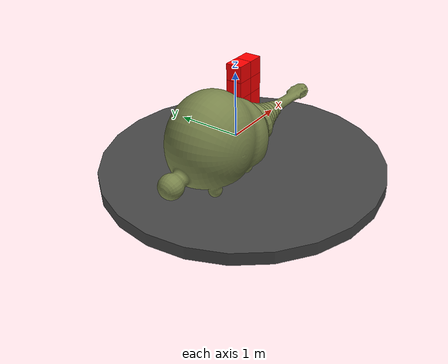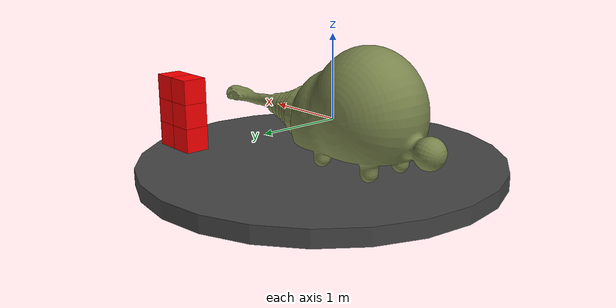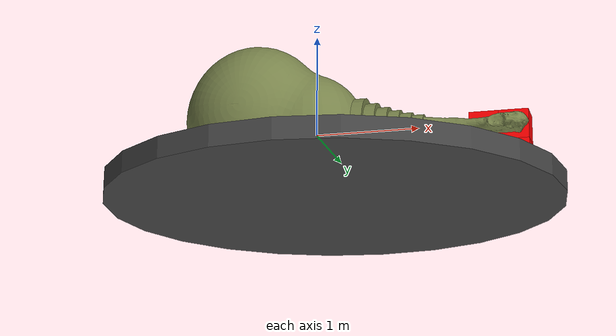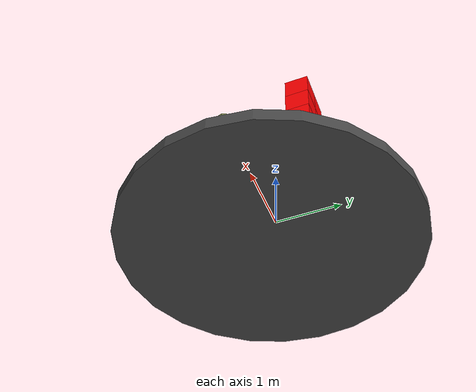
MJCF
<mujoco model="tailDoedicurus">
  <option timestep="0.008" iterations="50" solver="Newton" tolerance="1e-10" >
    <flag energy="enable"/>
  </option>
  <visual>
    <rgba haze="1 1 1 1"/>
  </visual>

  <default>
    <joint type="hinge" pos="0 0 0" axis="0 0 1" limited="true" range="-10 10" damping="0.2" solimplimit = "0.95 1 0.001 1 3"/>
    <geom material="bodies" />
  </default>

  <asset>
    <texture type="skybox" builtin="gradient" rgb1="1 1 1" rgb2="1 1 1" width="512" height="512"/>

    <texture name="texplane" type="2d" builtin="checker" rgb1=".25 .25 .25" rgb2=".3 .3 .3" width="512" height="512" mark="cross" markrgb=".8 .8 .8"/>

    <material name="matplane" reflectance="0.3" texture="texplane" texrepeat="2 2" texuniform="true"/>

    <material name="bodies" rgba="0.482353 0.52549 0.301961 1" reflectance="0" shininess="0.5"/>

    <mesh file="..\..\..\Obj\Club doedicurus_final_version_full_size.obj" name="clubMesh" scale="0.001 0.001 0.001"/>

    <mesh file="..\..\..\Obj\Carapace v9.obj" name="carapace" />

  </asset>

  <worldbody>
    <geom name="floor" pos="0.18 0 -0.6" size="2.2 0.1" type="cylinder" material="matplane"/>
    <camera name="closeup" pos="3.5 3.5 2" xyaxes="-1 1 0 0 -1 1.5"/>
    <camera name="topview" pos="0 0 5" xyaxes="1 0 0 0 1 0"/>
    <light directional="true" diffuse="1 1 1" specular=".5 .5 .5" pos="0 1 7" dir="0 -0.5 -1"/>

    <body pos="0 0 0">
      <joint name="J0" range="-90 90"/>
      <geom name="body" type = "mesh" mesh="carapace" pos="0.4 -0.03 -0.02" euler="0 0 90" mass = "1250"/>
      <site name="gyro" pos="0 0 0" size="0.01" />
      <site name="start1" pos="0 0.2 0" size="0.01"/>
      <site name="start2" pos="0 -0.2 0" size="0.01"/>
      <body pos="0.4 0 0">
        <geom name="C1" type="cylinder" pos="0.055 0 0" size=".3234 0.055" euler="0 90 0" mass="49.63"/>
        <site name="sl1" pos="0.0550 0.1617 0" size="0.01"/>
        <site name="sr1" pos="0.0550 -0.1617 0" size="0.01"/>
        <joint name="J1" />
        <geom name="J1" type="cylinder" pos="0 0 0" size=".003 .004" rgba=".5 .1 .8 .5"  group="1"/>

        <body pos="0.11 0 0">
          <geom name="C2" type="cylinder" pos="0.055 0 0" size=".2695 0.055" euler="0 90 0" mass="34.46" />
          <site name="sl2" pos="0.055 0.1347 0" size="0.01"/>
          <site name="sr2" pos="0.055 -0.1347 0" size="0.01"/>
          <joint name="J2" />
          <geom name="J2" type="cylinder" pos="0 0 0" size=".003 .004" rgba=".5 .1 .8 .5" mass="0" group="1"/>

          <body pos = "0.11 0 0">
            <geom name="C3" type="cylinder" pos="0.055 0 0" size=".2246 0.055" euler="0 90 0" mass="23.93"/>
            <site name="sl3" pos="0.055 0.1123 0" size="0.01"/>
            <site name="sr3" pos="0.055 -0.1123 0" size="0.01"/>
            <joint name="J3"/>
            <geom name ="J3" type="cylinder" pos="0 0 0" size=".003 .004" rgba=".5 .1 .8 .5" mass="0" group="1"/>

            <body pos = "0.11 0 0">
              <geom name="C4" type="cylinder" pos="0.055 0 0" size=".1871 0.055" euler="0 90 0" mass="16.62"/>
              <site name="sl4" pos="0.055 0.0935 0" size="0.01"/>
              <site name="sr4" pos="0.055 -0.0935 0" size="0.01"/>
              <joint name="J4"/>
              <geom name ="J4" type="cylinder" pos="0 0 0" size=".003 .004" rgba=".5 .1 .8 .5" mass="0" group="1"/>

              <body pos = "0.11 0 0">
                <geom name="C5" type="cylinder" pos="0.055 0 0" size=".1560 0.055" euler="0 90 0" mass="11.54"/>
                <site name="sl5" pos="0.055 0.078 0" size="0.01"/>
                <site name="sr5" pos="0.055 -0.078 0" size="0.01"/>
                <joint name="J5"/>
                <geom name ="J5" type="cylinder" pos="0 0 0" size=".003 .004" rgba=".5 .1 .8 .5" mass="0" group="1"/>

                <body pos = "0.11 0 0">
                  <geom name="C6" type="cylinder" pos="0.055 0 0" size=".1300 0.055" euler="0 90 0" mass="8.02"/>
                  <site name="sl6" pos="0.055 0.065 0" size="0.01"/>
                  <site name="sr6" pos="0.055 -0.065 0" size="0.01"/>
                  <joint name="J6"/>
                  <geom name ="J6" type="cylinder" pos="0 0 0" size=".003 .004" rgba=".5 .1 .8 .5" mass="0" group="1"/>

                  <body pos = "0.11 0 0">
                    <geom name="club" type = "mesh" mesh="clubMesh" pos="0.5 0 0" euler="0 0 180" mass = "43.59"/>
                    <site name="tip" pos="0.8 0 0" size="0.01"/>
                    <site name="cm" pos="0.51 0 0" size="0.01"/>
                    <joint name="J7"/>
                    <geom name ="J7" type="cylinder" pos="0 0 0" size=".003 .004" rgba=".5 .1 .8 .5" mass="0" group="1"/>
                    <site name="end1" pos="0.055 0.055 0" size="0.01"/>
                    <site name="end2" pos="0.055 -0.055 0" size="0.01"/>
                  </body>
                </body>
              </body>
            </body>
          </body>
        </body>
      </body>
    </body>

    <body pos = "0.7 1.5 0">
		<freejoint/>
		<geom name ="box" type ="box" size = "0.15 0.15 0.15" pos ="0.8 -0.5 -0.35" rgba ="1 0 0 1"/>
    </body>
	<body pos = "0.7 1.5 0.3" >
		<freejoint/>
		<geom name ="box2" type ="box" size = "0.15 0.15 0.15" pos ="0.8 -0.5 -0.35" rgba ="1 0 0 1"/>
    </body>
    <body pos = "1 1.5 0" >
		<freejoint/>
		<geom name ="box3" type ="box" size = "0.15 0.15 0.15" pos ="0.8 -0.5 -0.35" rgba ="1 0 0 1"/>
    </body>
    <body pos = "1 1.5 0.3">
		<freejoint/>
		<geom name ="box4" type ="box" size = "0.15 0.15 0.15" pos ="0.8 -0.5 -0.35" rgba ="1 0 0 1"/>
    </body>
	<body pos = "0.7 1.5 0.6">
		<freejoint/>
		<geom name ="box5" type ="box" size = "0.15 0.15 0.15" pos ="0.8 -0.5 -0.35" rgba ="1 0 0 1"/>
    </body>
	<body pos = "1 1.5 0.6">
		<freejoint/>
		<geom name ="box6" type ="box" size = "0.15 0.15 0.15" pos ="0.8 -0.5 -0.35" rgba ="1 0 0 1"/>
    </body>
  </worldbody>

  <tendon>
    <spatial name="tendon1" width="0.01" rgba= "0.8 1. 0.4 1." >
      <site site="start1"/>
      <site site="sl1"/>
      <site site="sl2"/>
      <site site="sl3"/>
      <site site="sl4"/>
      <site site="sl5"/>
      <site site="sl6"/>
      <site site="end1"/>
    </spatial>

    <spatial name="tendon2" width="0.01" rgba= "0.8 1. 0.4 1." >
      <site site="start2"/>
      <site site="sr1"/>
      <site site="sr2"/>
      <site site="sr3"/>
      <site site="sr4"/>
      <site site="sr5"/>
      <site site="sr6"/>
      <site site="end2"/>
    </spatial>
  </tendon>

  <sensor>
    <velocimeter name="gpstip" site="tip"/>
    <velocimeter name="gpscm" site="cm"/>
    <force name="tendonForce" site="start1"/>
  </sensor>

  <actuator>
    <muscle name="muscle1" force="71636" tendon="tendon1"/>
    <muscle name="muscle2" force="71636" tendon="tendon2" />
    <motor name="J0" gear="100000" joint="J0" />
  </actuator>
</mujoco>
